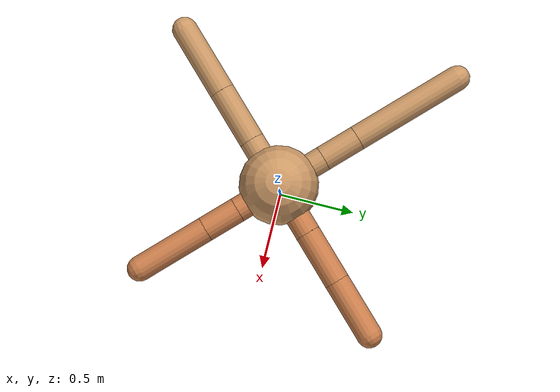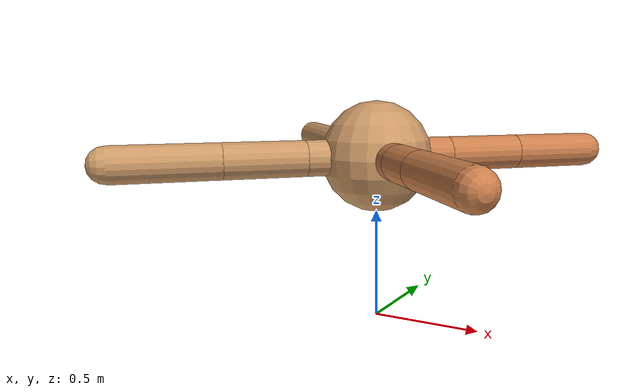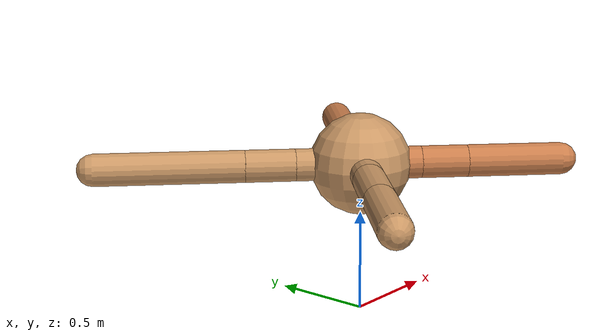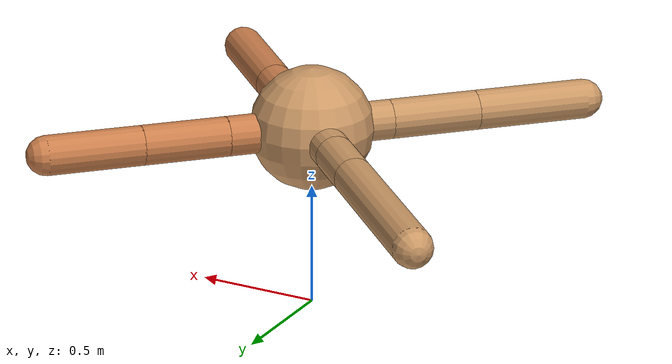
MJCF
<mujoco model="ant">
  <compiler angle="degree" coordinate="local" inertiafromgeom="true" />
  <option integrator="RK4" timestep="0.01" />
  <custom>
    <numeric data="0.0 0.0 0.55 1.0 0.0 0.0 0.0 0.0 1.0 0.0 -1.0 0.0 -1.0 0.0 1.0" name="init_qpos" />
  </custom>
  <default>
    <joint armature="1" damping="1" limited="true" />
    <geom conaffinity="0" condim="3" density="5.0" friction="1.5 0.1 0.1" margin="0.01" rgba="0.8 0.6 0.4 1" />
  </default>
  <worldbody>
    <body name="torso" pos="0 0 0.75">
      <geom name="torso_geom" pos="0 0 0" size="0.25" type="sphere" />

      <body name="front_left_leg" pos="0 0 0">
        <geom fromto="0.0 0.0 0.0 0.24742797779572057 0.24742797779572057 0.0" name="aux_1_geom" size="0.08" type="capsule" rgba=".8 .5 .3 1" />
        <body name="aux_1" pos="0.24742797779572057 0.24742797779572057 0.0">
          <joint axis="0 0 1" name="hip_1" pos="0.0 0.0 0.0" range="-40 40" type="hinge" />
          <geom fromto="0.0 0.0 0.0 0.24525517884931666 0.24525517884931666 0.0" name="left_leg_geom" size="0.08" type="capsule" rgba=".8 .5 .3 1" />
          <body pos="0.24525517884931666 0.24525517884931666 0.0" name="front_left_foot">
            <joint axis="-1 1 0" name="ankle_1" pos="0.0 0.0 0.0" range="30 100" type="hinge" />
            <geom fromto="0.0 0.0 0.0 0.2736700163610431 0.2736700163610431 0.0" name="left_ankle_geom" size="0.08" type="capsule" rgba=".8 .5 .3 1" />
          </body>
        </body>
      </body>
      <body name="front_right_leg" pos="0 0 0">
        <geom fromto="0.0 0.0 0.0 -0.22695192984192541 0.22695192984192541 0.0" name="aux_2_geom" size="0.08" type="capsule" />
        <body name="aux_2" pos="-0.22695192984192541 0.22695192984192541 0.0">
          <joint axis="0 0 1" name="hip_2" pos="0.0 0.0 0.0" range="-40 40" type="hinge" />
          <geom fromto="0.0 0.0 0.0 -0.17467991830814011 0.17467991830814011 0.0" name="right_leg_geom" size="0.08" type="capsule" />
          <body pos="-0.17467991830814011 0.17467991830814011 0.0" name="front_right_foot">
            <joint axis="1 1 0" name="ankle_2" pos="0.0 0.0 0.0" range="-100 -30" type="hinge" />
            <geom fromto="0.0 0.0 0.0 -0.5193937346408535 0.5193937346408535 0.0" name="right_ankle_geom" size="0.08" type="capsule" />
          </body>
        </body>
      </body>
      <body name="left_back_leg" pos="0 0 0">
        <geom fromto="0.0 0.0 0.0 -0.2302094922820123 -0.2302094922820123 0.0" name="aux_3_geom" size="0.08" type="capsule" />
        <body name="aux_3" pos="-0.2302094922820123 -0.2302094922820123 0.0">
          <joint axis="0 0 1" name="hip_3" pos="0.0 0.0 0.0" range="-40 40" type="hinge" />
          <geom fromto="0.0 0.0 0.0 -0.2550744377175757 -0.2550744377175757 0.0" name="back_leg_geom" size="0.08" type="capsule" />
          <body pos="-0.2550744377175757 -0.2550744377175757 0.0" name="left_back_foot">
            <joint axis="-1 1 0" name="ankle_3" pos="0.0 0.0 0.0" range="-100 -30" type="hinge" />
            <geom fromto="0.0 0.0 0.0 -0.32361037664231324 -0.32361037664231324 0.0" name="third_ankle_geom" size="0.08" type="capsule" />
          </body>
        </body>
      </body>
      <body name="right_back_leg" pos="0 0 0">
        <geom fromto="0.0 0.0 0.0 0.2118618192586754 -0.2118618192586754 0.0" name="aux_4_geom" size="0.08" type="capsule" rgba=".8 .5 .3 1" />
        <body name="aux_4" pos="0.2118618192586754 -0.2118618192586754 0.0">
          <joint axis="0 0 1" name="hip_4" pos="0.0 0.0 0.0" range="-40 40" type="hinge" />
          <geom fromto="0.0 0.0 0.0 0.163354108339021 -0.163354108339021 0.0" name="rightback_leg_geom" size="0.08" type="capsule" rgba=".8 .5 .3 1" />
          <body pos="0.163354108339021 -0.163354108339021 0.0" name="right_back_foot">
            <joint axis="1 1 0" name="ankle_4" pos="0.0 0.0 0.0" range="30 100" type="hinge" />
            <geom fromto="0.0 0.0 0.0 0.33385659835221043 -0.33385659835221043 0.0" name="fourth_ankle_geom" size="0.08" type="capsule" rgba=".8 .5 .3 1" />
          </body>
        </body>
      </body>
    </body>
  </worldbody>
  <actuator>
    <motor ctrllimited="true" ctrlrange="-1.0 1.0" joint="hip_4" gear="150" />
    <motor ctrllimited="true" ctrlrange="-1.0 1.0" joint="ankle_4" gear="150" />
    <motor ctrllimited="true" ctrlrange="-1.0 1.0" joint="hip_1" gear="150" />
    <motor ctrllimited="true" ctrlrange="-1.0 1.0" joint="ankle_1" gear="150" />
    <motor ctrllimited="true" ctrlrange="-1.0 1.0" joint="hip_2" gear="150" />
    <motor ctrllimited="true" ctrlrange="-1.0 1.0" joint="ankle_2" gear="150" />
    <motor ctrllimited="true" ctrlrange="-1.0 1.0" joint="hip_3" gear="150" />
    <motor ctrllimited="true" ctrlrange="-1.0 1.0" joint="ankle_3" gear="150" />
  </actuator>
</mujoco>
